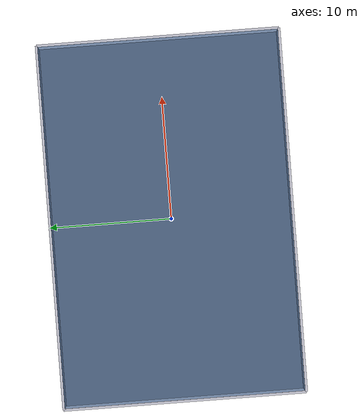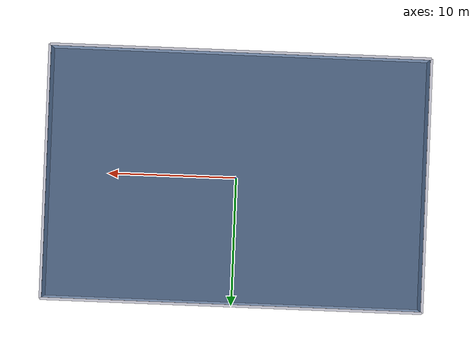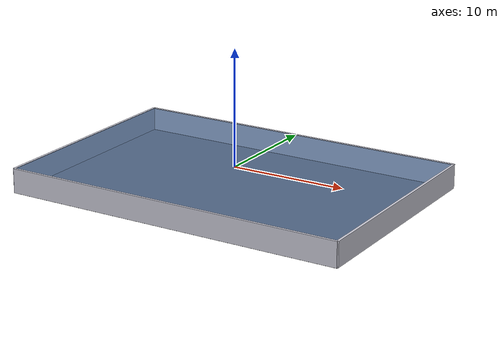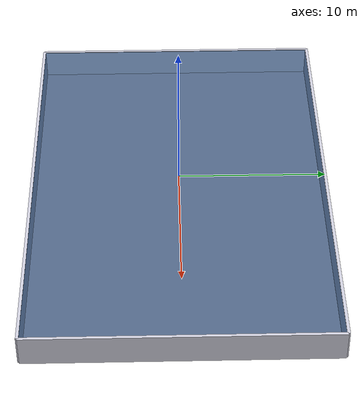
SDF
<?xml version="1.0"?>
<sdf version="1.9">
  <model name="marv_pool">
    <static>true</static>
    <link name="link">
      <visual name="floor">
        <pose>0 0 -2.05 0 0 0</pose>
        <geometry>
          <box>
            <size>30 20 0.1</size>
          </box>
        </geometry>
        <material>
          <ambient>0.35 0.35 0.38 1</ambient>
          <diffuse>0.45 0.45 0.48 1</diffuse>
        </material>
      </visual>
      <collision name="floor_collision">
        <pose>0 0 -2.05 0 0 0</pose>
        <geometry>
          <box>
            <size>30 20 0.1</size>
          </box>
        </geometry>
      </collision>

      <visual name="water_surface">
        <pose>0 0 0 0 0 0</pose>
        <geometry>
          <box>
            <size>30 20 0.02</size>
          </box>
        </geometry>
        <material>
          <ambient>0.05 0.25 0.55 0.35</ambient>
          <diffuse>0.1 0.35 0.65 0.35</diffuse>
        </material>
      </visual>

      <!-- Pool walls -->
      <visual name="wall_n">
        <pose>0 10  -1 0 0 0</pose>
        <geometry><box><size>30 0.2 2.1</size></box></geometry>
        <material><ambient>0.7 0.7 0.75 1</ambient><diffuse>0.8 0.8 0.85 1</diffuse></material>
      </visual>
      <collision name="wall_n"><pose>0 10 -1 0 0 0</pose><geometry><box><size>30 0.2 2.1</size></box></geometry></collision>
      <visual name="wall_s">
        <pose>0 -10 -1 0 0 0</pose>
        <geometry><box><size>30 0.2 2.1</size></box></geometry>
        <material><ambient>0.7 0.7 0.75 1</ambient><diffuse>0.8 0.8 0.85 1</diffuse></material>
      </visual>
      <collision name="wall_s"><pose>0 -10 -1 0 0 0</pose><geometry><box><size>30 0.2 2.1</size></box></geometry></collision>
      <visual name="wall_e">
        <pose>15 0 -1 0 0 0</pose>
        <geometry><box><size>0.2 20 2.1</size></box></geometry>
        <material><ambient>0.7 0.7 0.75 1</ambient><diffuse>0.8 0.8 0.85 1</diffuse></material>
      </visual>
      <collision name="wall_e"><pose>15 0 -1 0 0 0</pose><geometry><box><size>0.2 20 2.1</size></box></geometry></collision>
      <visual name="wall_w">
        <pose>-15 0 -1 0 0 0</pose>
        <geometry><box><size>0.2 20 2.1</size></box></geometry>
        <material><ambient>0.7 0.7 0.75 1</ambient><diffuse>0.8 0.8 0.85 1</diffuse></material>
      </visual>
      <collision name="wall_w"><pose>-15 0 -1 0 0 0</pose><geometry><box><size>0.2 20 2.1</size></box></geometry></collision>
    </link>
  </model>
</sdf>
